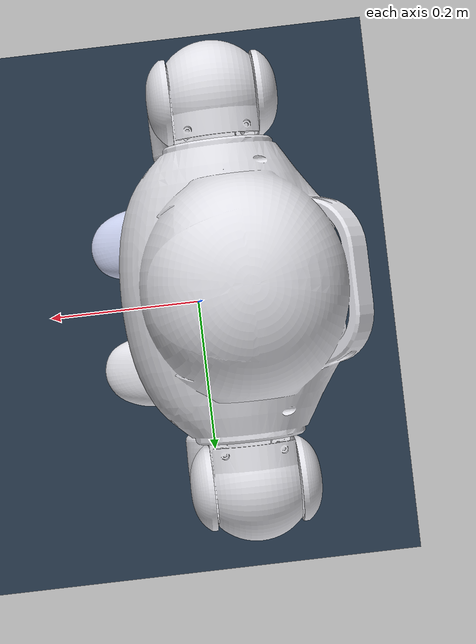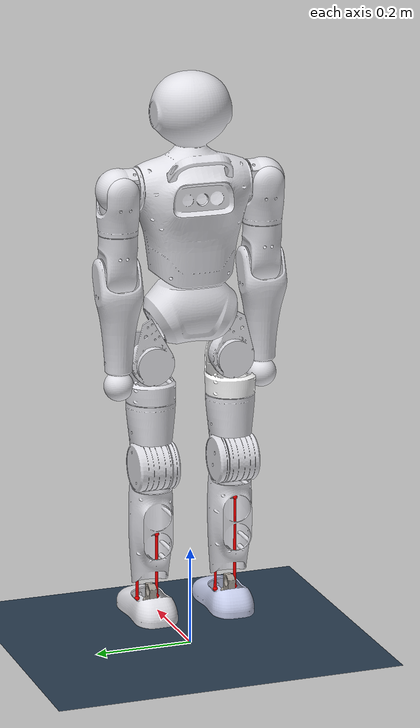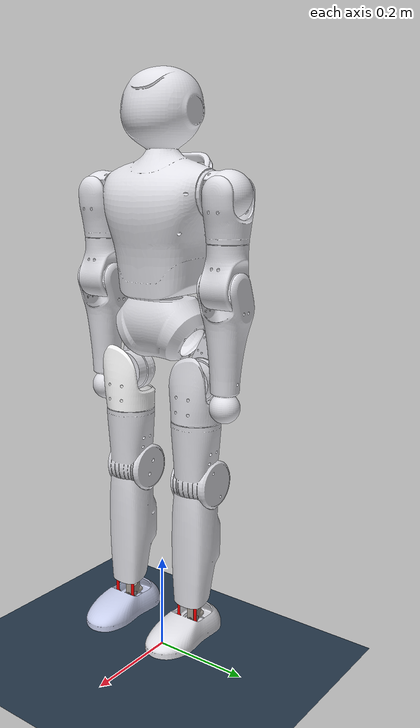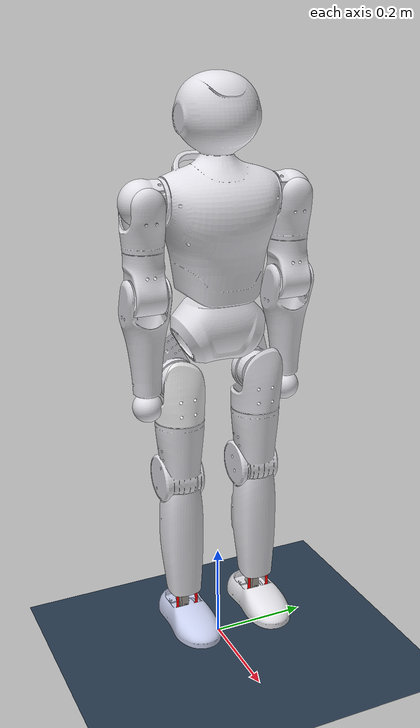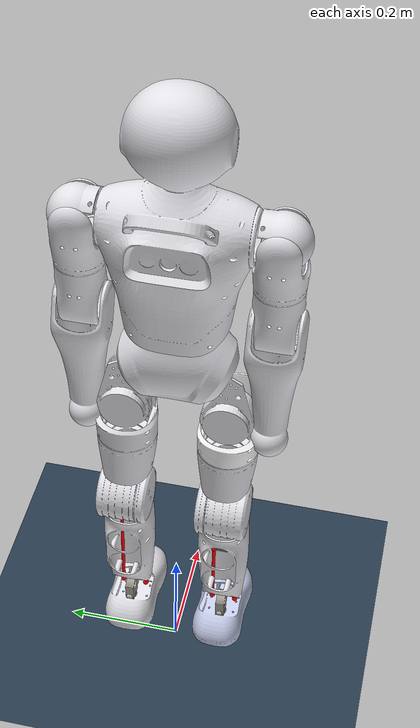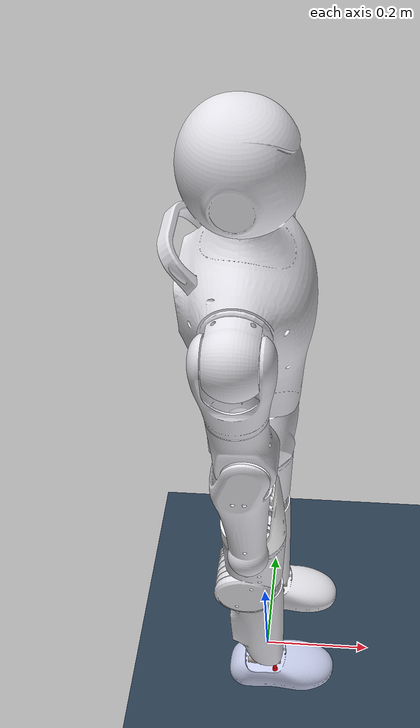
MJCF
<mujoco model="LZ01_Lite_V3">
  <compiler angle="radian" meshdir="../meshes/" autolimits="true"/>
  <statistic meansize="0.121747" extent="1.54948" center="0.0133329 0.000272657 -0.244401"/>
  <option timestep="0.001" gravity="0 0 -9.81" iterations="50" tolerance="1e-10" solver="Newton" jacobian="dense" cone="pyramidal" />
  <default>
    <geom condim="1" type="mesh" />
    <joint limited="true" damping="0.01" frictionloss="0.01" armature="0.01" pos="0 0 0" />
    <motor ctrllimited="false" forcelimited="false" />
    <default class="collision">
      <geom condim="4" group="0" contype="1" conaffinity="15" solref='0.001 1' friction='0.9 0.2 0.2'/>
    </default>
    <tendon stiffness="3e5" frictionloss="1e4" damping="1e4" limited="true" rgba="1 0 0 1" solreflimit="0.004 1" solimplimit="0.95 0.99 0.001 0.1 6"/>
    <default class="visual">
      <geom group="1" conaffinity="0" contype="0" density="0"/>
    </default>
    <default class='leg_joint_param'>
      <joint  damping="0.01" frictionloss="0.01" armature="0.01"/>
    </default>
    <default class='arm_joint_param'>
      <joint  damping="0.01" frictionloss="0.01" armature="0.01"/>
    </default>
  </default>

  <asset>
    <mesh name="pelvis_link" file="pelvis_link.STL"/>
    <mesh name="left_hip_pitch_link" file="left_hip_pitch_link.STL"/>
    <mesh name="left_hip_roll_link" file="left_hip_roll_link.STL"/>
    <mesh name="left_hip_yaw_link" file="left_hip_yaw_link.STL"/>
    <mesh name="left_knee_link" file="left_knee_link.STL"/>
    <mesh name="left_ankle_pitch_link" file="left_ankle_pitch_link.STL"/>
    <mesh name="left_ankle_roll_link" file="left_ankle_roll_link.STL"/>
    <mesh name="right_hip_pitch_link" file="right_hip_pitch_link.STL"/>
    <mesh name="right_hip_roll_link" file="right_hip_roll_link.STL"/>
    <mesh name="right_hip_yaw_link" file="right_hip_yaw_link.STL"/>
    <mesh name="right_knee_link" file="right_knee_link.STL"/>
    <mesh name="right_ankle_pitch_link" file="right_ankle_pitch_link.STL"/>
    <mesh name="right_ankle_roll_link" file="right_ankle_roll_link.STL"/>
    <mesh name="torso_yaw_link" file="torso_yaw_link.STL"/>
    <mesh name="right_shoulder_pitch_link" file="right_shoulder_pitch_link.STL"/>
    <mesh name="right_shoulder_roll_link" file="right_shoulder_roll_link.STL"/>
    <mesh name="right_shoulder_yaw_link" file="right_shoulder_yaw_link.STL"/>
    <mesh name="right_elbow_link" file="right_elbow_link.STL"/>
    <mesh name="left_shoulder_pitch_link" file="left_shoulder_pitch_link.STL"/>
    <mesh name="left_shoulder_roll_link" file="left_shoulder_roll_link.STL"/>
    <mesh name="left_shoulder_yaw_link" file="left_shoulder_yaw_link.STL"/>
    <mesh name="left_elbow_link" file="left_elbow_link.STL"/>
    <texture type="skybox" builtin="gradient" rgb1="0.3 0.5 0.7" rgb2="0 0 0" width="512" height="512"/>
    <texture name="texplane" type="2d" builtin="checker" rgb1=".2 .3 .4" rgb2=".1 0.15 0.2"
        width="512" height="512" mark="cross" markrgb=".8 .8 .8"/>
    <texture name="texplane2" type="2d" builtin="checker" rgb1="1 0.3137 0.1843" rgb2="0.0 0.30196 0.38039"
        width="512" height="512" mark="cross" markrgb=".8 .8 .8"/>

    <material name="matplane" reflectance="0." texture="texplane" texrepeat="1 1" texuniform="true"/>
    <material name="matplane2" reflectance="0.1" texture="texplane2" texrepeat="1 1" texuniform="true"/>
  </asset>

  <worldbody>
    <light directional="true" diffuse=".4 .4 .4" specular="0.1 0.1 0.1" pos="0 0 5.0" dir="0 0 -1" castshadow="false"/>
    <light directional="true" diffuse=".6 .6 .6" specular="0.2 0.2 0.2" pos="0 0 4" dir="0 0 -1"/>
    <geom name="ground" type="plane" size="0 0 1" pos="0.001 0 0" quat="1 0 0 0" material="matplane" condim="3" conaffinity='15'/>

    <body name="pelvis_link" pos="0 0 0.72" euler="0 0 0">
      <freejoint name="root"/>
      <inertial pos="-5.8492e-06 8.4885e-07 -0.024029" quat="0.707065 0.707056 0.00137956 -0.0113251" mass="2.3981" diaginertia="0.00272509 0.00260096 0.00245515"/>

      <geom type="mesh" contype="0" conaffinity="0" group="1" density="0" rgba="0.8902 0.8902 0.91373 1" mesh="pelvis_link"/>
      <geom type="mesh" rgba="0.8902 0.8902 0.91373 1" mesh="pelvis_link"/>
      <site name='imu' size='0.01' pos='0.0 0 -0.0175' rgba="1 0 0 1"/>

      <body name="left_hip_pitch_link" pos="0 0.075171 -0.0434" quat="0.965926 -0.25882 0 0">
        <inertial pos="-0.0027623 0.04103 -0.052472" quat="0.98815 0.153494 8.89906e-05 0.00019225" mass="1.0143" diaginertia="0.0010959 0.000902866 0.000796084"/>
        <joint name="left_hip_pitch_joint" pos="0 0 0" axis="0 1 0" range="-2.181 2.181"/>
        <geom type="mesh" contype="0" conaffinity="0" group="1" density="0" rgba="0.8902 0.8902 0.91373 1" mesh="left_hip_pitch_link"/>
        <body name="left_hip_roll_link" pos="0 0.045 -0.06" quat="0.965926 0.25882 0 0">
          <inertial pos="0.01872 0.00068656 -0.037436" quat="0.990069 -0.0419535 0.134036 0.00618251" mass="0.18644" diaginertia="0.00023996 0.000168462 0.000126368"/>
          <joint name="left_hip_roll_joint" pos="0 0 0" axis="1 0 0" range="-0.523 1.57"/>
          <geom type="mesh" contype="0" conaffinity="0" group="1" density="0" rgba="0.8902 0.8902 0.91373 1" mesh="left_hip_roll_link"/>
          <body name="left_hip_yaw_link" pos="0 0 -0.065">
            <inertial pos="-0.009409 0.0023219 -0.099988" quat="0.703804 -0.0274475 -0.0187018 0.709617" mass="1.6983" diaginertia="0.00178649 0.00141964 0.00133497"/>
            <joint name="left_hip_yaw_joint" pos="0 0 0" axis="0 0 1" range="-1.745 1.745"/>
            <geom type="mesh" contype="0" conaffinity="0" group="1" density="0" rgba="0.8902 0.8902 0.91373 1" mesh="left_hip_yaw_link"/>
            <body name="left_knee_link" pos="-0.017 0 -0.145">
              <inertial pos="0.012433 -0.0026256 -0.13804" quat="0.998552 0.0447007 -0.00936227 -0.0284381" mass="1.6142" diaginertia="0.00405328 0.00389293 0.000773527"/>
              <joint name="left_knee_joint" pos="0 0 0" axis="0 1 0" range="-0.087 2.443"/>
              <geom type="mesh" contype="0" conaffinity="0" group="1" density="0" rgba="0.8902 0.8902 0.91373 1" mesh="left_knee_link"/>
              <body name="left_ankle_pitch_link" pos="0.017 0 -0.27">
                <inertial pos="0.00032738 7.8877e-12 -0.018502" quat="0.695734 -0.126309 -0.126309 0.695734" mass="0.1573" diaginertia="5.5127e-05 3.21977e-05 2.82263e-05"/>
                <joint name="left_ankle_pitch_joint" pos="0 0 0" axis="0 1 0" range="-1.047 0.523"/>
                <geom type="mesh" contype="0" conaffinity="0" group="1" density="0" rgba="0.64706 0.61961 0.58824 1" mesh="left_ankle_pitch_link"/>
                <body name="left_ankle_roll_link" pos="0 0 -0.03">
                  <site name='left_force' size='0.01' pos='0.0 0 0.0'/>
                  <inertial pos="0.02385 -0.0011027 -0.012281" quat="0.000475398 0.707172 -0.000471743 0.707041" mass="0.2981" diaginertia="0.00047896 0.000418201 8.59394e-05"/>
                  <joint name="left_ankle_roll_joint" pos="0 0 0" axis="1 0 0" range="-0.261 0.261"/>
                  <geom type="mesh" contype="0" conaffinity="0" group="1" density="0" rgba="0.8902 0.8902 0.91373 1" mesh="left_ankle_roll_link"/>
                  <geom type="mesh" rgba="0.8902 0.8902 0.91373 1" mesh="left_ankle_roll_link"/>

                  <site name="lleg_Link6_a" rgba="1 0 0 1" size="0.005" pos="0.025  0.021 0.008"/>
                  <site name="lleg_Link6_b" rgba="1 0 0 1" size="0.005" pos="0.025 -0.021 0.008"/>
                </body>
              </body>
              <body name="lleg_Link4_1" pos="0.0 0 -0.1" euler="0 0 0">
                <joint name="left_ankle_upper_joint" pos="0.042 0 0" axis="1 0 0" range="-3.80285 3.80285"/>
                <geom type="box" pos="0.042 0.01 0" euler="0 0 0" size="0.002 0.015 0.002"/>
                <site name="lleg_Link4_1" rgba="1 0 0 1" size="0.005" pos="0.042  0.021 -0.0"/>
              </body>
              <body name="lleg_Link4_2" pos="0 0 -0.16" euler="0 0 0">
                <joint name="left_ankle_lower_joint" pos="0.042 0 0" axis="-1 0 0" range="-3.80285 3.80285"/>
                <geom type="box" pos="0.042 -0.01 0" euler="0 0 0" size="0.002 0.015 0.002"/>
                <site name="lleg_Link4_2" rgba="1 0 0 1" size="0.005" pos="0.042 -0.021 -0.0"/>
              </body>

            </body>
          </body>
        </body>
      </body>
      <body name="right_hip_pitch_link" pos="0 -0.075171 -0.0434" quat="0.965926 0.25882 0 0">
        <inertial pos="-0.0027627 -0.041034 -0.05247" quat="0.98818 -0.153296 0.000146418 8.49629e-05" mass="1.0143" diaginertia="0.0010959 0.000902885 0.000796065"/>
        <joint name="right_hip_pitch_joint" pos="0 0 0" axis="0 1 0" range="-2.181 2.181"/>
        <geom type="mesh" contype="0" conaffinity="0" group="1" density="0" rgba="0.8902 0.8902 0.91373 1" mesh="right_hip_pitch_link"/>
        <body name="right_hip_roll_link" pos="0 -0.045 -0.06" quat="0.965926 -0.25882 0 0">
          <inertial pos="0.018712 -0.00068881 -0.037438" quat="0.99007 0.0420566 0.133993 -0.00622991" mass="0.18641" diaginertia="0.000239925 0.000168444 0.000126331"/>
          <joint name="right_hip_roll_joint" pos="0 0 0" axis="1 0 0" range="-1.57 0.523"/>
          <geom type="mesh" contype="0" conaffinity="0" group="1" density="0" rgba="1 1 1 1" mesh="right_hip_roll_link"/>
          <body name="right_hip_yaw_link" pos="0 0 -0.065">
            <inertial pos="-0.0094067 -0.0023217 -0.099989" quat="0.709508 -0.0186468 -0.0274534 0.703916" mass="1.6983" diaginertia="0.00178649 0.00141964 0.00133507"/>
            <joint name="right_hip_yaw_joint" pos="0 0 0" axis="0 0 1" range="-1.745 1.745"/>
            <geom type="mesh" contype="0" conaffinity="0" group="1" density="0" rgba="0.8902 0.8902 0.91373 1" mesh="right_hip_yaw_link"/>
            <body name="right_knee_link" pos="-0.017 0 -0.145">
              <inertial pos="0.012426 0.0026243 -0.13804" quat="0.998558 -0.0447001 -0.00951967 0.028168" mass="1.6142" diaginertia="0.00405321 0.00389294 0.000773458"/>
              <joint name="right_knee_joint" pos="0 0 0" axis="0 1 0" range="-0.087 2.443"/>
              <geom type="mesh" contype="0" conaffinity="0" group="1" density="0" rgba="0.8902 0.8902 0.91373 1" mesh="right_knee_link"/>
              <body name="right_ankle_pitch_link" pos="0.017 0 -0.27">
                <inertial pos="0.00032738 9.5676e-12 -0.018502" quat="0.695734 -0.126309 -0.126309 0.695734" mass="0.1573" diaginertia="5.5127e-05 3.21977e-05 2.82263e-05"/>
                <joint name="right_ankle_pitch_joint" pos="0 0 0" axis="0 1 0" range="-1.047 0.523"/>
                <geom type="mesh" contype="0" conaffinity="0" group="1" density="0" rgba="0.64706 0.61961 0.58824 1" mesh="right_ankle_pitch_link"/>
                <body name="right_ankle_roll_link" pos="0 0 -0.03">
                  <site name='right_force' size='0.01' pos='0.0 0 0.0'/>
                  <inertial pos="0.02385 0.0011027 -0.012281" quat="-0.000472835 0.707172 0.00047437 0.707041" mass="0.2981" diaginertia="0.00047896 0.000418201 8.59394e-05"/>
                  <joint name="right_ankle_roll_joint" pos="0 0 0" axis="1 0 0" range="-0.261 0.261"/>
                  <geom type="mesh" contype="0" conaffinity="0" group="1" density="0" rgba="0.79216 0.81961 0.93333 1" mesh="right_ankle_roll_link"/>
                  <geom type="mesh" rgba="0.79216 0.81961 0.93333 1" mesh="right_ankle_roll_link"/>

                  <site name="rleg_Link6_a" rgba="1 0 0 1" size="0.005" pos="0.025 -0.021 0.008"/>
                  <site name="rleg_Link6_b" rgba="1 0 0 1" size="0.005" pos="0.025 0.021 0.008"/>
                </body>
              </body>

              <body name="rleg_Link4_1" pos="0.0 0 -0.1" euler="0 0 0">
                <joint name="right_ankle_upper_joint" pos="0.042 -0.0 0" axis="-1 0 0" range="-3.80285 3.80285"/>
                <geom type="box" pos="0.042 -0.01 0" euler="0 0 0" size="0.002 0.015 0.002"/>
                <site name="rleg_Link4_1" rgba="1 0 0 1" size="0.005" pos="0.042  -0.021 -0.0"/>
              </body>
              <body name="rleg_Link4_2" pos="0 0 -0.16" euler="0 0 0">
                <joint name="right_ankle_lower_joint" pos="0.042 0.0 0" axis="1 0 0" range="-3.80285 3.80285"/>
                <geom type="box" pos="0.042 0.01 0" euler="-0 0 0" size="0.002 0.015 0.002"/>
                <site name="rleg_Link4_2" rgba="1 0 0 1" size="0.005" pos="0.042 0.021 -0.0"/>
              </body>

            </body>
          </body>
        </body>
      </body>
      <body name="torso_yaw_link" pos="0 0 0.02">
        <inertial pos="-0.0002144 -0.00014585 0.16212" quat="0.704931 0.707148 -0.0446533 0.0319504" mass="5.7494" diaginertia="0.0129249 0.0117857 0.00796396"/>
        <joint name="torso_yaw_joint" pos="0 0 0" axis="0 0 1" range="-1.832 1.832"/>
        <geom type="mesh" contype="0" conaffinity="0" group="1" density="0" rgba="0.8902 0.8902 0.91373 1" mesh="torso_yaw_link"/>
        <body name="right_shoulder_pitch_link" pos="0 -0.1115 0.216">
          <inertial pos="0.00021514 -0.035932 -1.2302e-05" quat="0.00360833 0.707111 0.0036111 0.707084" mass="0.51326" diaginertia="0.000245261 0.000238699 0.00022475"/>
          <joint name="right_shoulder_pitch_joint" pos="0 0 0" axis="0 1 0" range="-3.665 1.57"/>
          <geom type="mesh" contype="0" conaffinity="0" group="1" density="0" rgba="0.8902 0.8902 0.91373 1" mesh="right_shoulder_pitch_link"/>
          <body name="right_shoulder_roll_link" pos="0 -0.039 0">
            <inertial pos="-0.00020711 3.3213e-08 -0.066445" quat="0.999929 -0.000102827 0.00635168 -0.0100465" mass="0.60617" diaginertia="0.000432184 0.000398726 0.000304969"/>
            <joint name="right_shoulder_roll_joint" pos="0 0 0" axis="1 0 0" range="-3.228 0.087"/>
            <geom type="mesh" contype="0" conaffinity="0" group="1" density="0" rgba="0.8902 0.8902 0.91373 1" mesh="right_shoulder_roll_link"/>
            <body name="right_shoulder_yaw_link" pos="0 0 -0.109">
              <inertial pos="0.0077083 -0.00032649 -0.051345" quat="0.997328 0.00156268 -0.072956 -0.00357916" mass="0.61072" diaginertia="0.000395392 0.000373429 0.000277298"/>
              <joint name="right_shoulder_yaw_joint" pos="0 0 0" axis="0 0 1" range="-2.617 2.617"/>
              <geom type="mesh" contype="0" conaffinity="0" group="1" density="0" rgba="0.8902 0.8902 0.91373 1" mesh="right_shoulder_yaw_link"/>
              <body name="right_elbow_link" pos="0.0095 0 -0.059">
                <inertial pos="-0.0094205 0.00047447 -0.093259" quat="0.706277 0.00241789 0.00406615 0.70792" mass="0.41439" diaginertia="0.000934694 0.000886358 0.000196188"/>
                <joint name="right_elbow_joint" pos="0 0 0" axis="0 -1 0" range="-0.087 2.356"/>
                <geom type="mesh" contype="0" conaffinity="0" group="1" density="0" rgba="0.8902 0.8902 0.91373 1" mesh="right_elbow_link"/>
                <geom type="mesh" rgba="0.8902 0.8902 0.91373 1" mesh="right_elbow_link"/>
              </body>
            </body>
          </body>
        </body>
        <body name="left_shoulder_pitch_link" pos="0 0.1115 0.216">
          <inertial pos="0.00021514 0.035932 1.2302e-05" quat="0.0036111 0.707084 0.00360833 0.707111" mass="0.51326" diaginertia="0.000245261 0.000238699 0.00022475"/>
          <joint name="left_shoulder_pitch_joint" pos="0 0 0" axis="0 1 0" range="-3.665 1.57"/>
          <geom type="mesh" contype="0" conaffinity="0" group="1" density="0" rgba="0.8902 0.8902 0.91373 1" mesh="left_shoulder_pitch_link"/>
          <body name="left_shoulder_roll_link" pos="0 0.039 0">
            <inertial pos="-0.00020711 3.323e-08 -0.066445" quat="0.999929 -0.000102142 0.00635285 -0.0100477" mass="0.60617" diaginertia="0.000432184 0.000398726 0.000304969"/>
            <joint name="left_shoulder_roll_joint" pos="0 0 0" axis="1 0 0" range="-0.087 3.228"/>
            <geom type="mesh" contype="0" conaffinity="0" group="1" density="0" rgba="0.8902 0.8902 0.91373 1" mesh="left_shoulder_roll_link"/>
            <body name="left_shoulder_yaw_link" pos="0 0 -0.109">
              <inertial pos="0.0077083 -0.00032649 -0.051345" quat="0.997328 0.00156268 -0.072956 -0.00357916" mass="0.61072" diaginertia="0.000395392 0.000373429 0.000277298"/>
              <joint name="left_shoulder_yaw_joint" pos="0 0 0" axis="0 0 1" range="-2.617 2.617"/>
              <geom type="mesh" contype="0" conaffinity="0" group="1" density="0" rgba="0.8902 0.8902 0.91373 1" mesh="left_shoulder_yaw_link"/>
              <body name="left_elbow_link" pos="0.0095 0 -0.059">
                <inertial pos="-0.0094205 0.00047447 -0.093259" quat="0.706277 0.00241789 0.00406615 0.70792" mass="0.41439" diaginertia="0.000934694 0.000886358 0.000196188"/>
                <joint name="left_elbow_joint" pos="0 0 0" axis="0 1 0" range="-2.356 0.087"/>
                <geom type="mesh" contype="0" conaffinity="0" group="1" density="0" rgba="0.8902 0.8902 0.91373 1" mesh="left_elbow_link"/>
                <geom type="mesh" rgba="0.8902 0.8902 0.91373 1" mesh="left_elbow_link"/>
              </body>
            </body>
          </body>
        </body>
      </body>
    </body>
  </worldbody>
  <tendon>
    <spatial range="0.192 0.192001"> <site site="lleg_Link4_1"/> <site site="lleg_Link6_a"/> </spatial>
    <spatial range="0.132 0.132001"> <site site="lleg_Link4_2"/> <site site="lleg_Link6_b"/> </spatial>

    <spatial range="0.192 0.192001"> <site site="rleg_Link4_1"/> <site site="rleg_Link6_a"/> </spatial>
    <spatial range="0.132 0.132001"> <site site="rleg_Link4_2"/> <site site="rleg_Link6_b"/> </spatial>
  </tendon>
   <actuator>
		<motor name="left_hip_pitch_joint" joint="left_hip_pitch_joint"/>
		<motor name="left_hip_roll_joint" joint="left_hip_roll_joint"/>
		<motor name="left_hip_yaw_joint" joint="left_hip_yaw_joint"/>
		<motor name="left_knee_joint" joint="left_knee_joint"/>
    <motor name="left_ankle_upper_joint" joint="left_ankle_upper_joint" />
    <motor name="left_ankle_lower_joint" joint="left_ankle_lower_joint" />

		<motor name="right_hip_pitch_joint" joint="right_hip_pitch_joint"/>
		<motor name="right_hip_roll_joint" joint="right_hip_roll_joint"/>
		<motor name="right_hip_yaw_joint" joint="right_hip_yaw_joint"/>
		<motor name="right_knee_joint" joint="right_knee_joint"/>
    <motor name="right_ankle_upper_joint" joint="right_ankle_upper_joint" />
    <motor name="right_ankle_lower_joint" joint="right_ankle_lower_joint" />

    <motor name="left_shoulder_pitch_joint" joint="left_shoulder_pitch_joint" />
    <motor name="left_shoulder_roll_joint" joint="left_shoulder_roll_joint" />
    <motor name="left_shoulder_yaw_joint" joint="left_shoulder_yaw_joint" />
    <motor name="left_elbow_joint" joint="left_elbow_joint" />

    <motor name="right_shoulder_pitch_joint" joint="right_shoulder_pitch_joint" />
    <motor name="right_shoulder_roll_joint" joint="right_shoulder_roll_joint" />
    <motor name="right_shoulder_yaw_joint" joint="right_shoulder_yaw_joint" />
    <motor name="right_elbow_joint" joint="right_elbow_joint" />

    <motor name="torso_yaw_joint" joint="torso_yaw_joint" />

	</actuator>

  <sensor>
    <framequat     name='orientation' objtype='site' noise='0.001' objname='imu'/>
    <framepos     name='position' objtype='site' noise='0.001' objname='imu'/>
    <gyro          name='angular-velocity'    site='imu' noise='0.005' cutoff='34.9'/>
    <velocimeter   name='linear-velocity'     site='imu' noise='0.001' cutoff='30'/>
    <accelerometer name='linear-acceleration' site='imu' noise='0.005' cutoff='157'/>
    <magnetometer  name='magnetometer'        site='imu'/>

    <force  name='left_force'        site='left_force'/>
    <force  name='right_force'        site='right_force'/>

    <jointpos  name='left_ankle_pitch_joint'        joint='left_ankle_pitch_joint'/>
    <jointpos  name='left_ankle_roll_joint'        joint='left_ankle_roll_joint'/>
    <jointpos  name='right_ankle_pitch_joint'        joint='right_ankle_pitch_joint'/>
    <jointpos  name='right_ankle_roll_joint'        joint='right_ankle_roll_joint'/>

    <jointvel  name='left_ankle_pitch_joint_vel'        joint='left_ankle_pitch_joint'/>
    <jointvel  name='left_ankle_roll_joint_vel'        joint='left_ankle_roll_joint'/>
    <jointvel  name='right_ankle_pitch_joint_vel'        joint='right_ankle_pitch_joint'/>
    <jointvel  name='right_ankle_roll_joint_vel'        joint='right_ankle_roll_joint'/>
  </sensor>

</mujoco>
